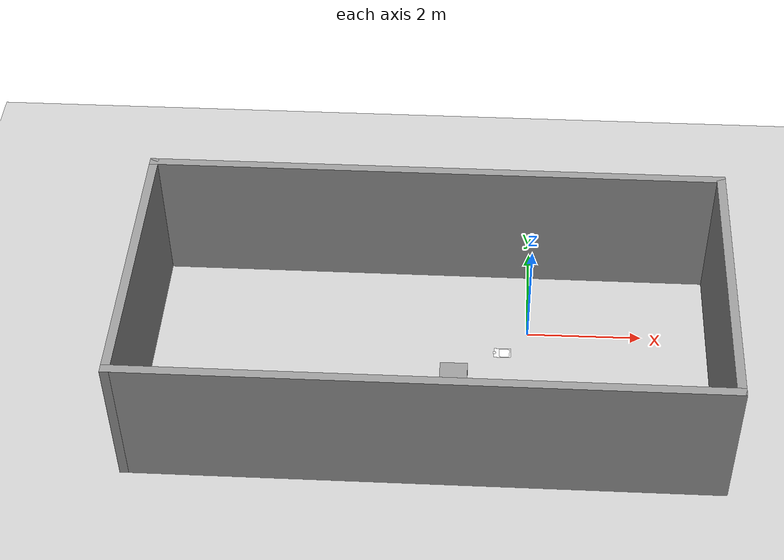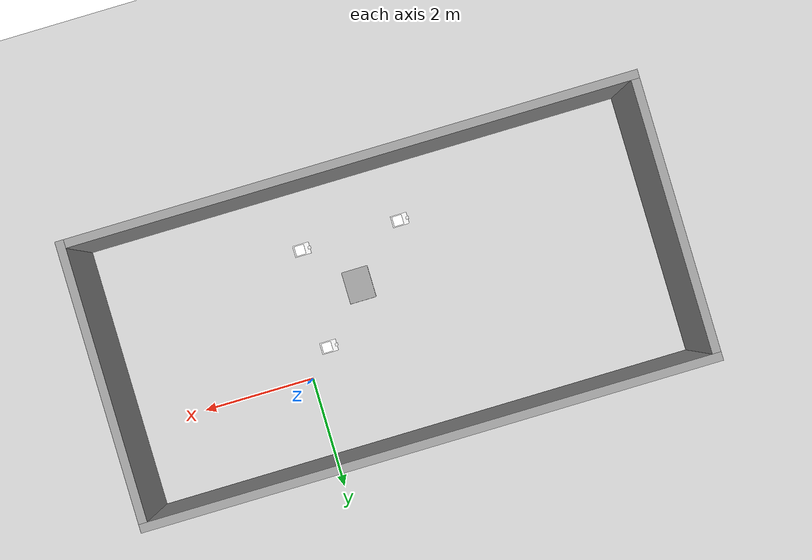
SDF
<sdf version="1.7">
 <world name="default">
  <model name="ground_plane">
   <static>1</static>
   <link name="link">
    <collision name="collision">
     <geometry><plane><normal>0 0 1</normal><size>100 100</size></plane></geometry>
     <surface>
      <contact><collide_bitmask>65535</collide_bitmask></contact>
      <friction><ode><mu>100</mu><mu2>50</mu2></ode></friction>
     </surface>
    </collision>
    <visual name="visual">
     <cast_shadows>0</cast_shadows>
     <geometry><plane><normal>0 0 1</normal><size>100 100</size></plane></geometry>
     <material>
      <script><uri>file://media/materials/scripts/gazebo.material</uri><name>Gazebo/Grey</name></script>
     </material>
    </visual>
   </link>
  </model>
  <model name="model1_aruco">
   <pose>-1.70307 -0.944452 0 0 -0 0</pose>
   <link name="Wall_1">
    <collision name="Wall_1_Collision">
     <geometry><box><size>10 0.15 2.5</size></box></geometry>
     <pose>0 0 1.25 0 -0 0</pose>
    </collision>
    <visual name="Wall_1_Visual">
     <pose>0 0 1.25 0 -0 0</pose>
     <geometry><box><size>10 0.15 2.5</size></box></geometry>
     <material>
      <script><uri>file://media/materials/scripts/gazebo.material</uri><name>Gazebo/Grey</name></script>
      <ambient>1 1 1 1</ambient>
     </material>
     <meta><layer>0</layer></meta>
    </visual>
    <pose>0 2.425 0 0 -0 0</pose>
   </link>
   <link name="Wall_2">
    <collision name="Wall_2_Collision">
     <geometry><box><size>5 0.15 2.5</size></box></geometry>
     <pose>0 0 1.25 0 -0 0</pose>
    </collision>
    <visual name="Wall_2_Visual">
     <pose>0 0 1.25 0 -0 0</pose>
     <geometry><box><size>5 0.15 2.5</size></box></geometry>
     <material>
      <script><uri>file://media/materials/scripts/gazebo.material</uri><name>Gazebo/Grey</name></script>
      <ambient>1 1 1 1</ambient>
     </material>
     <meta><layer>0</layer></meta>
    </visual>
    <pose>4.925 0 0 0 -0 -1.5708</pose>
   </link>
   <link name="Wall_3">
    <collision name="Wall_3_Collision">
     <geometry><box><size>10 0.15 2.5</size></box></geometry>
     <pose>0 0 1.25 0 -0 0</pose>
    </collision>
    <visual name="Wall_3_Visual">
     <pose>0 0 1.25 0 -0 0</pose>
     <geometry><box><size>10 0.15 2.5</size></box></geometry>
     <material>
      <script><uri>file://media/materials/scripts/gazebo.material</uri><name>Gazebo/Grey</name></script>
      <ambient>1 1 1 1</ambient>
     </material>
     <meta><layer>0</layer></meta>
    </visual>
    <pose>0 -2.425 0 0 -0 3.14159</pose>
   </link>
   <link name="Wall_4">
    <collision name="Wall_4_Collision">
     <geometry><box><size>5 0.15 2.5</size></box></geometry>
     <pose>0 0 1.25 0 -0 0</pose>
    </collision>
    <visual name="Wall_4_Visual">
     <pose>0 0 1.25 0 -0 0</pose>
     <geometry><box><size>5 0.15 2.5</size></box></geometry>
     <material>
      <script><uri>file://media/materials/scripts/gazebo.material</uri><name>Gazebo/Grey</name></script>
      <ambient>1 1 1 1</ambient>
     </material>
     <meta><layer>0</layer></meta>
    </visual>
    <pose>-4.925 0 0 0 -0 1.5708</pose>
   </link>
   <static>1</static>
  </model>
  <model name="aruco_visual_marker_0_pad">
   <frame name="aruco_visual_marker_0::__model__" attached_to="aruco_visual_marker_0::marker">
    <pose relative_to="__model__">0 0 0 0 -0 0</pose>
   </frame>
   <link name="aruco_visual_marker_0::marker">
    <pose relative_to="aruco_visual_marker_0::__model__">0 0 0 0 -0 0</pose>
    <visual name="visual">
     <geometry><box><size>0.1778 0.1778 1e-05</size></box></geometry>
     <material>
      <script>
       <uri>model://aruco_visual_marker_0/materials/scripts</uri>
       <uri>model://aruco_visual_marker_0/materials/textures</uri>
       <name>ArucoVisualMarker0/Marker</name>
      </script>
      <ambient>1 1 1 1</ambient>
      <diffuse>1 1 1 1</diffuse>
      <specular>0 0 0 1</specular>
      <emissive>1 1 1 0</emissive>
      <shader type="vertex"><normal_map>__default__</normal_map></shader>
     </material>
    </visual>
    <collision name="collision"><geometry><box><size>0.1778 0.1778 1e-05</size></box></geometry></collision>
   </link>
   <link name="aruco_visual_marker_0::marker_pad">
    <pose relative_to="aruco_visual_marker_0::marker">0 0 -1e-05 0 -0 0</pose>
    <visual name="visual">
     <geometry><box><size>0.1778 0.1778 1e-05</size></box></geometry>
     <material>
      <lighting>1</lighting>
      <script><uri>file://media/materials/scripts/gazebo.material</uri><name>Gazebo/White</name></script>
      <ambient>0.3 0.3 0.3 1</ambient>
      <diffuse>0.7 0.7 0.7 1</diffuse>
      <specular>0.01 0.01 0.01 1</specular>
      <emissive>1 1 1 0</emissive>
      <shader type="vertex"><normal_map>__default__</normal_map></shader>
     </material>
    </visual>
    <collision name="collision"><geometry><box><size>0.1778 0.1778 1e-05</size></box></geometry></collision>
   </link>
   <joint name="aruco_visual_marker_0::marker_JOINT_marker_pad" type="revolute">
    <parent>aruco_visual_marker_0::marker</parent>
    <child>aruco_visual_marker_0::marker_pad</child>
    <axis>
     <xyz>0 0 1</xyz>
     <limit><upper>0</upper><lower>0</lower></limit>
     <dynamics><spring_reference>0</spring_reference><spring_stiffness>0</spring_stiffness></dynamics>
    </axis>
   </joint>
   <static>1</static>
   <link name="marker_pad_large">
    <pose relative_to="aruco_visual_marker_0::marker">-0.035 0 -1e-05 0 -0 0</pose>
    <visual name="visual">
     <geometry><box><size>0.297 0.21 1e-05</size></box></geometry>
     <material>
      <lighting>1</lighting>
      <script><uri>file://media/materials/scripts/gazebo.material</uri><name>Gazebo/White</name></script>
      <ambient>0.3 0.3 0.3 1</ambient>
      <diffuse>0.7 0.7 0.7 1</diffuse>
      <specular>0.01 0.01 0.01 1</specular>
      <emissive>1 1 1 0</emissive>
      <shader type="vertex"><normal_map>__default__</normal_map></shader>
     </material>
    </visual>
    <collision name="collision">
     <geometry><box><size>0.297 0.21 1e-05</size></box></geometry>
     <surface>
      <friction>
       <ode><mu>1</mu><mu2>1</mu2><fdir1>0 0 0</fdir1><slip1>0</slip1><slip2>0</slip2></ode>
       <torsional>
        <coefficient>1</coefficient>
        <patch_radius>0</patch_radius>
        <surface_radius>0</surface_radius>
        <use_patch_radius>1</use_patch_radius>
        <ode><slip>0</slip></ode>
       </torsional>
      </friction>
      <bounce><restitution_coefficient>0</restitution_coefficient><threshold>1e+06</threshold></bounce>
      <contact>
       <collide_without_contact>0</collide_without_contact>
       <collide_without_contact_bitmask>1</collide_without_contact_bitmask>
       <collide_bitmask>1</collide_bitmask>
       <ode>
        <soft_cfm>0</soft_cfm>
        <soft_erp>0.2</soft_erp>
        <kp>1e+13</kp>
        <kd>1</kd>
        <max_vel>0.01</max_vel>
        <min_depth>0</min_depth>
       </ode>
       <bullet>
        <split_impulse>1</split_impulse>
        <split_impulse_penetration_threshold>-0.01</split_impulse_penetration_threshold>
        <soft_cfm>0</soft_cfm>
        <soft_erp>0.2</soft_erp>
        <kp>1e+13</kp>
        <kd>1</kd>
       </bullet>
      </contact>
     </surface>
    </collision>
   </link>
   <link name="marker_num">
    <pose relative_to="marker_pad_large">-0.14 0 1e-05 0 -0 0</pose>
    <visual name="visual">
     <geometry><box><size>0.05 0.05 1e-05</size></box></geometry>
     <material>
      <script>
       <uri>model://aruco_visual_marker_0_pad/materials/scripts</uri>
       <uri>model://aruco_visual_marker_0_pad/materials/textures</uri>
       <name>ArucoVisualMarker0/Num</name>
      </script>
      <ambient>1 1 1 1</ambient>
      <diffuse>1 1 1 1</diffuse>
      <specular>0 0 0 1</specular>
      <emissive>1 1 1 0</emissive>
      <shader type="vertex"><normal_map>__default__</normal_map></shader>
     </material>
    </visual>
    <collision name="collision">
     <geometry><box><size>0.05 0.05 1e-05</size></box></geometry>
     <surface>
      <friction>
       <ode><mu>1</mu><mu2>1</mu2><fdir1>0 0 0</fdir1><slip1>0</slip1><slip2>0</slip2></ode>
       <torsional>
        <coefficient>1</coefficient>
        <patch_radius>0</patch_radius>
        <surface_radius>0</surface_radius>
        <use_patch_radius>1</use_patch_radius>
        <ode><slip>0</slip></ode>
       </torsional>
      </friction>
      <bounce><restitution_coefficient>0</restitution_coefficient><threshold>1e+06</threshold></bounce>
      <contact>
       <collide_without_contact>0</collide_without_contact>
       <collide_without_contact_bitmask>1</collide_without_contact_bitmask>
       <collide_bitmask>1</collide_bitmask>
       <ode>
        <soft_cfm>0</soft_cfm>
        <soft_erp>0.2</soft_erp>
        <kp>1e+13</kp>
        <kd>1</kd>
        <max_vel>0.01</max_vel>
        <min_depth>0</min_depth>
       </ode>
       <bullet>
        <split_impulse>1</split_impulse>
        <split_impulse_penetration_threshold>-0.01</split_impulse_penetration_threshold>
        <soft_cfm>0</soft_cfm>
        <soft_erp>0.2</soft_erp>
        <kp>1e+13</kp>
        <kd>1</kd>
       </bullet>
      </contact>
     </surface>
    </collision>
   </link>
   <joint name="marker_JOINT_marker_pad_large" type="revolute">
    <parent>aruco_visual_marker_0::marker</parent>
    <child>marker_pad_large</child>
    <axis>
     <xyz>0 0 1</xyz>
     <limit><upper>0</upper><lower>0</lower></limit>
     <dynamics><spring_reference>0</spring_reference><spring_stiffness>0</spring_stiffness></dynamics>
    </axis>
   </joint>
   <joint name="pad_large_JOINT_marker_num" type="revolute">
    <parent>marker_pad_large</parent>
    <child>marker_num</child>
    <axis>
     <xyz>0 0 1</xyz>
     <limit><upper>0</upper><lower>0</lower></limit>
     <dynamics><spring_reference>0</spring_reference><spring_stiffness>0</spring_stiffness></dynamics>
    </axis>
   </joint>
   <static>1</static>
   <pose>-0.4319 -2.2752 0 0 -0 0</pose>
  </model>
  <model name="aruco_visual_marker_1_pad">
   <frame name="aruco_visual_marker_1::__model__" attached_to="aruco_visual_marker_1::marker">
    <pose relative_to="__model__">0 0 0 0 -0 0</pose>
   </frame>
   <link name="aruco_visual_marker_1::marker">
    <pose relative_to="aruco_visual_marker_1::__model__">0 0 0 0 -0 0</pose>
    <visual name="visual">
     <geometry><box><size>0.1778 0.1778 1e-05</size></box></geometry>
     <material>
      <script>
       <uri>model://aruco_visual_marker_1/materials/scripts</uri>
       <uri>model://aruco_visual_marker_1/materials/textures</uri>
       <name>ArucoVisualMarker1/Marker</name>
      </script>
      <ambient>1 1 1 1</ambient>
      <diffuse>1 1 1 1</diffuse>
      <specular>0 0 0 1</specular>
      <emissive>1 1 1 0</emissive>
      <shader type="vertex"><normal_map>__default__</normal_map></shader>
     </material>
    </visual>
    <collision name="collision"><geometry><box><size>0.1778 0.1778 1e-05</size></box></geometry></collision>
   </link>
   <link name="aruco_visual_marker_1::marker_pad">
    <pose relative_to="aruco_visual_marker_1::marker">0 0 -1e-05 0 -0 0</pose>
    <visual name="visual">
     <geometry><box><size>0.1778 0.1778 1e-05</size></box></geometry>
     <material>
      <lighting>1</lighting>
      <script><uri>file://media/materials/scripts/gazebo.material</uri><name>Gazebo/White</name></script>
      <ambient>0.3 0.3 0.3 1</ambient>
      <diffuse>0.7 0.7 0.7 1</diffuse>
      <specular>0.01 0.01 0.01 1</specular>
      <emissive>1 1 1 0</emissive>
      <shader type="vertex"><normal_map>__default__</normal_map></shader>
     </material>
    </visual>
    <collision name="collision"><geometry><box><size>0.1778 0.1778 1e-05</size></box></geometry></collision>
   </link>
   <joint name="aruco_visual_marker_1::marker_JOINT_marker_pad" type="revolute">
    <parent>aruco_visual_marker_1::marker</parent>
    <child>aruco_visual_marker_1::marker_pad</child>
    <axis>
     <xyz>0 0 1</xyz>
     <limit><upper>0</upper><lower>0</lower></limit>
     <dynamics><spring_reference>0</spring_reference><spring_stiffness>0</spring_stiffness></dynamics>
    </axis>
   </joint>
   <static>1</static>
   <link name="marker_pad_large">
    <pose relative_to="aruco_visual_marker_1::marker">-0.035 0 -1e-05 0 -0 0</pose>
    <visual name="visual">
     <geometry><box><size>0.297 0.21 1e-05</size></box></geometry>
     <material>
      <lighting>1</lighting>
      <script><uri>file://media/materials/scripts/gazebo.material</uri><name>Gazebo/White</name></script>
      <ambient>0.3 0.3 0.3 1</ambient>
      <diffuse>0.7 0.7 0.7 1</diffuse>
      <specular>0.01 0.01 0.01 1</specular>
      <emissive>1 1 1 0</emissive>
      <shader type="vertex"><normal_map>__default__</normal_map></shader>
     </material>
    </visual>
    <collision name="collision">
     <geometry><box><size>0.297 0.21 1e-05</size></box></geometry>
     <surface>
      <friction>
       <ode><mu>1</mu><mu2>1</mu2><fdir1>0 0 0</fdir1><slip1>0</slip1><slip2>0</slip2></ode>
       <torsional>
        <coefficient>1</coefficient>
        <patch_radius>0</patch_radius>
        <surface_radius>0</surface_radius>
        <use_patch_radius>1</use_patch_radius>
        <ode><slip>0</slip></ode>
       </torsional>
      </friction>
      <bounce><restitution_coefficient>0</restitution_coefficient><threshold>1e+06</threshold></bounce>
      <contact>
       <collide_without_contact>0</collide_without_contact>
       <collide_without_contact_bitmask>1</collide_without_contact_bitmask>
       <collide_bitmask>1</collide_bitmask>
       <ode>
        <soft_cfm>0</soft_cfm>
        <soft_erp>0.2</soft_erp>
        <kp>1e+13</kp>
        <kd>1</kd>
        <max_vel>0.01</max_vel>
        <min_depth>0</min_depth>
       </ode>
       <bullet>
        <split_impulse>1</split_impulse>
        <split_impulse_penetration_threshold>-0.01</split_impulse_penetration_threshold>
        <soft_cfm>0</soft_cfm>
        <soft_erp>0.2</soft_erp>
        <kp>1e+13</kp>
        <kd>1</kd>
       </bullet>
      </contact>
     </surface>
    </collision>
   </link>
   <link name="marker_num">
    <pose relative_to="marker_pad_large">-0.14 0 1e-05 0 -0 0</pose>
    <visual name="visual">
     <geometry><box><size>0.05 0.05 1e-05</size></box></geometry>
     <material>
      <script>
       <uri>model://aruco_visual_marker_1_pad/materials/scripts</uri>
       <uri>model://aruco_visual_marker_1_pad/materials/textures</uri>
       <name>ArucoVisualMarker1/Num</name>
      </script>
      <ambient>1 1 1 1</ambient>
      <diffuse>1 1 1 1</diffuse>
      <specular>0 0 0 1</specular>
      <emissive>1 1 1 0</emissive>
      <shader type="vertex"><normal_map>__default__</normal_map></shader>
     </material>
    </visual>
    <collision name="collision">
     <geometry><box><size>0.05 0.05 1e-05</size></box></geometry>
     <surface>
      <friction>
       <ode><mu>1</mu><mu2>1</mu2><fdir1>0 0 0</fdir1><slip1>0</slip1><slip2>0</slip2></ode>
       <torsional>
        <coefficient>1</coefficient>
        <patch_radius>0</patch_radius>
        <surface_radius>0</surface_radius>
        <use_patch_radius>1</use_patch_radius>
        <ode><slip>0</slip></ode>
       </torsional>
      </friction>
      <bounce><restitution_coefficient>0</restitution_coefficient><threshold>1e+06</threshold></bounce>
      <contact>
       <collide_without_contact>0</collide_without_contact>
       <collide_without_contact_bitmask>1</collide_without_contact_bitmask>
       <collide_bitmask>1</collide_bitmask>
       <ode>
        <soft_cfm>0</soft_cfm>
        <soft_erp>0.2</soft_erp>
        <kp>1e+13</kp>
        <kd>1</kd>
        <max_vel>0.01</max_vel>
        <min_depth>0</min_depth>
       </ode>
       <bullet>
        <split_impulse>1</split_impulse>
        <split_impulse_penetration_threshold>-0.01</split_impulse_penetration_threshold>
        <soft_cfm>0</soft_cfm>
        <soft_erp>0.2</soft_erp>
        <kp>1e+13</kp>
        <kd>1</kd>
       </bullet>
      </contact>
     </surface>
    </collision>
   </link>
   <joint name="marker_JOINT_marker_pad_large" type="revolute">
    <parent>aruco_visual_marker_1::marker</parent>
    <child>marker_pad_large</child>
    <axis>
     <xyz>0 0 1</xyz>
     <limit><upper>0</upper><lower>0</lower></limit>
     <dynamics><spring_reference>0</spring_reference><spring_stiffness>0</spring_stiffness></dynamics>
    </axis>
   </joint>
   <joint name="pad_large_JOINT_marker_num" type="revolute">
    <parent>marker_pad_large</parent>
    <child>marker_num</child>
    <axis>
     <xyz>0 0 1</xyz>
     <limit><upper>0</upper><lower>0</lower></limit>
     <dynamics><spring_reference>0</spring_reference><spring_stiffness>0</spring_stiffness></dynamics>
    </axis>
   </joint>
   <static>1</static>
   <pose>-2.26506 -2.28664 0 0 -0 0</pose>
  </model>
  <model name="aruco_visual_marker_7_pad">
   <frame name="aruco_visual_marker_7::__model__" attached_to="aruco_visual_marker_7::marker">
    <pose relative_to="__model__">0 0 0 0 -0 0</pose>
   </frame>
   <link name="aruco_visual_marker_7::marker">
    <pose relative_to="aruco_visual_marker_7::__model__">0 0 0 0 -0 0</pose>
    <visual name="visual">
     <geometry><box><size>0.1778 0.1778 1e-05</size></box></geometry>
     <material>
      <script>
       <uri>model://aruco_visual_marker_7/materials/scripts</uri>
       <uri>model://aruco_visual_marker_7/materials/textures</uri>
       <name>ArucoVisualMarker7/Marker</name>
      </script>
      <ambient>1 1 1 1</ambient>
      <diffuse>1 1 1 1</diffuse>
      <specular>0 0 0 1</specular>
      <emissive>1 1 1 0</emissive>
      <shader type="vertex"><normal_map>__default__</normal_map></shader>
     </material>
    </visual>
    <collision name="collision"><geometry><box><size>0.1778 0.1778 1e-05</size></box></geometry></collision>
   </link>
   <link name="aruco_visual_marker_7::marker_pad">
    <pose relative_to="aruco_visual_marker_7::marker">0 0 -1e-05 0 -0 0</pose>
    <visual name="visual">
     <geometry><box><size>0.1778 0.1778 1e-05</size></box></geometry>
     <material>
      <lighting>1</lighting>
      <script><uri>file://media/materials/scripts/gazebo.material</uri><name>Gazebo/White</name></script>
      <ambient>0.3 0.3 0.3 1</ambient>
      <diffuse>0.7 0.7 0.7 1</diffuse>
      <specular>0.01 0.01 0.01 1</specular>
      <emissive>1 1 1 0</emissive>
      <shader type="vertex"><normal_map>__default__</normal_map></shader>
     </material>
    </visual>
    <collision name="collision"><geometry><box><size>0.1778 0.1778 1e-05</size></box></geometry></collision>
   </link>
   <joint name="aruco_visual_marker_7::marker_JOINT_marker_pad" type="revolute">
    <parent>aruco_visual_marker_7::marker</parent>
    <child>aruco_visual_marker_7::marker_pad</child>
    <axis>
     <xyz>0 0 1</xyz>
     <limit><upper>0</upper><lower>0</lower></limit>
     <dynamics><spring_reference>0</spring_reference><spring_stiffness>0</spring_stiffness></dynamics>
    </axis>
   </joint>
   <static>1</static>
   <link name="marker_pad_large">
    <pose relative_to="aruco_visual_marker_7::marker">-0.035 0 -1e-05 0 -0 0</pose>
    <visual name="visual">
     <geometry><box><size>0.297 0.21 1e-05</size></box></geometry>
     <material>
      <lighting>1</lighting>
      <script><uri>file://media/materials/scripts/gazebo.material</uri><name>Gazebo/White</name></script>
      <ambient>0.3 0.3 0.3 1</ambient>
      <diffuse>0.7 0.7 0.7 1</diffuse>
      <specular>0.01 0.01 0.01 1</specular>
      <emissive>1 1 1 0</emissive>
      <shader type="vertex"><normal_map>__default__</normal_map></shader>
     </material>
    </visual>
    <collision name="collision">
     <geometry><box><size>0.297 0.21 1e-05</size></box></geometry>
     <surface>
      <friction>
       <ode><mu>1</mu><mu2>1</mu2><fdir1>0 0 0</fdir1><slip1>0</slip1><slip2>0</slip2></ode>
       <torsional>
        <coefficient>1</coefficient>
        <patch_radius>0</patch_radius>
        <surface_radius>0</surface_radius>
        <use_patch_radius>1</use_patch_radius>
        <ode><slip>0</slip></ode>
       </torsional>
      </friction>
      <bounce><restitution_coefficient>0</restitution_coefficient><threshold>1e+06</threshold></bounce>
      <contact>
       <collide_without_contact>0</collide_without_contact>
       <collide_without_contact_bitmask>1</collide_without_contact_bitmask>
       <collide_bitmask>1</collide_bitmask>
       <ode>
        <soft_cfm>0</soft_cfm>
        <soft_erp>0.2</soft_erp>
        <kp>1e+13</kp>
        <kd>1</kd>
        <max_vel>0.01</max_vel>
        <min_depth>0</min_depth>
       </ode>
       <bullet>
        <split_impulse>1</split_impulse>
        <split_impulse_penetration_threshold>-0.01</split_impulse_penetration_threshold>
        <soft_cfm>0</soft_cfm>
        <soft_erp>0.2</soft_erp>
        <kp>1e+13</kp>
        <kd>1</kd>
       </bullet>
      </contact>
     </surface>
    </collision>
   </link>
   <link name="marker_num">
    <pose relative_to="marker_pad_large">-0.14 0 1e-05 0 -0 0</pose>
    <visual name="visual">
     <geometry><box><size>0.05 0.05 1e-05</size></box></geometry>
     <material>
      <script>
       <uri>model://aruco_visual_marker_7_pad/materials/scripts</uri>
       <uri>model://aruco_visual_marker_7_pad/materials/textures</uri>
       <name>ArucoVisualMarker7/Num</name>
      </script>
      <ambient>1 1 1 1</ambient>
      <diffuse>1 1 1 1</diffuse>
      <specular>0 0 0 1</specular>
      <emissive>1 1 1 0</emissive>
      <shader type="vertex"><normal_map>__default__</normal_map></shader>
     </material>
    </visual>
    <collision name="collision">
     <geometry><box><size>0.05 0.05 1e-05</size></box></geometry>
     <surface>
      <friction>
       <ode><mu>1</mu><mu2>1</mu2><fdir1>0 0 0</fdir1><slip1>0</slip1><slip2>0</slip2></ode>
       <torsional>
        <coefficient>1</coefficient>
        <patch_radius>0</patch_radius>
        <surface_radius>0</surface_radius>
        <use_patch_radius>1</use_patch_radius>
        <ode><slip>0</slip></ode>
       </torsional>
      </friction>
      <bounce><restitution_coefficient>0</restitution_coefficient><threshold>1e+06</threshold></bounce>
      <contact>
       <collide_without_contact>0</collide_without_contact>
       <collide_without_contact_bitmask>1</collide_without_contact_bitmask>
       <collide_bitmask>1</collide_bitmask>
       <ode>
        <soft_cfm>0</soft_cfm>
        <soft_erp>0.2</soft_erp>
        <kp>1e+13</kp>
        <kd>1</kd>
        <max_vel>0.01</max_vel>
        <min_depth>0</min_depth>
       </ode>
       <bullet>
        <split_impulse>1</split_impulse>
        <split_impulse_penetration_threshold>-0.01</split_impulse_penetration_threshold>
        <soft_cfm>0</soft_cfm>
        <soft_erp>0.2</soft_erp>
        <kp>1e+13</kp>
        <kd>1</kd>
       </bullet>
      </contact>
     </surface>
    </collision>
   </link>
   <joint name="marker_JOINT_marker_pad_large" type="revolute">
    <parent>aruco_visual_marker_7::marker</parent>
    <child>marker_pad_large</child>
    <axis>
     <xyz>0 0 1</xyz>
     <limit><upper>0</upper><lower>0</lower></limit>
     <dynamics><spring_reference>0</spring_reference><spring_stiffness>0</spring_stiffness></dynamics>
    </axis>
   </joint>
   <joint name="pad_large_JOINT_marker_num" type="revolute">
    <parent>marker_pad_large</parent>
    <child>marker_num</child>
    <axis>
     <xyz>0 0 1</xyz>
     <limit><upper>0</upper><lower>0</lower></limit>
     <dynamics><spring_reference>0</spring_reference><spring_stiffness>0</spring_stiffness></dynamics>
    </axis>
   </joint>
   <static>1</static>
   <pose>-0.402498 -0.468807 0 0 -0 0</pose>
  </model>
  <model name="unit_box">
   <pose>-1.27082 -1.37651 0.193057 0 -0 6.3e-05</pose>
   <link name="link">
    <inertial>
     <mass>1</mass>
     <inertia>
      <ixx>0.166667</ixx>
      <ixy>0</ixy>
      <ixz>0</ixz>
      <iyy>0.166667</iyy>
      <iyz>0</iyz>
      <izz>0.166667</izz>
     </inertia>
    </inertial>
    <collision name="collision">
     <geometry><box><size>0.475337 0.577557 0.386114</size></box></geometry>
    </collision>
    <visual name="visual">
     <geometry><box><size>0.475337 0.577557 0.386114</size></box></geometry>
     <material>
      <script><name>Gazebo/Grey</name><uri>file://media/materials/scripts/gazebo.material</uri></script>
     </material>
    </visual>
   </link>
  </model>
 </world>
</sdf>
